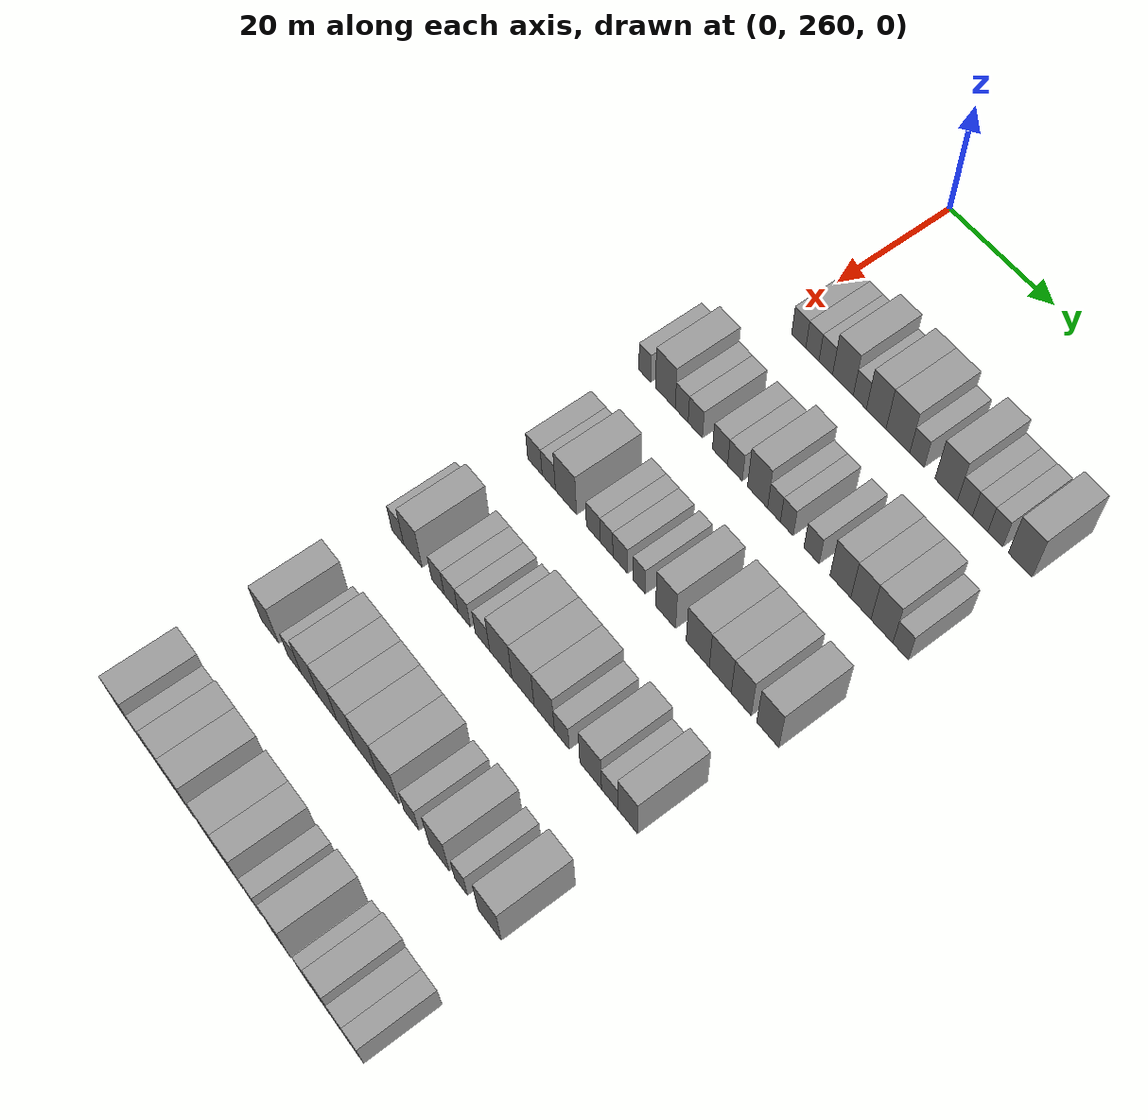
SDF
<sdf version="1.6">
 <world name="default">
  <model name="building_145">
   <static>1</static>
   <pose>25.0000 263.9168 0 0.000000 0.000000 0.000000</pose>
   <link name="link">
    <pose>0 0 3.00 0 0 0</pose>
    <collision name="collision"><geometry><box><size>10.0000 2.8024 6.0000</size></box></geometry></collision>
    <visual name="visual">
     <cast_shadows>0</cast_shadows>
     <geometry><box><size>10.0000 2.8024 6.0000</size></box></geometry>
     <material>
      <script>
       <uri>model://grey_wall/materials/scripts</uri>
       <uri>model://grey_wall/materials/textures</uri>
       <name>vrc/grey_wall</name>
      </script>
     </material>
    </visual>
   </link>
  </model>
  <model name="building_146">
   <static>1</static>
   <pose>25.0000 266.6062 0 0.000000 0.000000 0.000000</pose>
   <link name="link">
    <pose>0 0 3.00 0 0 0</pose>
    <collision name="collision"><geometry><box><size>10.0000 2.5764 6.0000</size></box></geometry></collision>
    <visual name="visual">
     <cast_shadows>0</cast_shadows>
     <geometry><box><size>10.0000 2.5764 6.0000</size></box></geometry>
     <material>
      <script>
       <uri>model://grey_wall/materials/scripts</uri>
       <uri>model://grey_wall/materials/textures</uri>
       <name>vrc/grey_wall</name>
      </script>
     </material>
    </visual>
   </link>
  </model>
  <model name="building_147">
   <static>1</static>
   <pose>25.0000 269.2245 0 0.000000 0.000000 0.000000</pose>
   <link name="link">
    <pose>0 0 3.00 0 0 0</pose>
    <collision name="collision"><geometry><box><size>10.0000 2.6601 6.0000</size></box></geometry></collision>
    <visual name="visual">
     <cast_shadows>0</cast_shadows>
     <geometry><box><size>10.0000 2.6601 6.0000</size></box></geometry>
     <material>
      <script>
       <uri>model://grey_wall/materials/scripts</uri>
       <uri>model://grey_wall/materials/textures</uri>
       <name>vrc/grey_wall</name>
      </script>
     </material>
    </visual>
   </link>
  </model>
  <model name="building_148">
   <static>1</static>
   <pose>25.0000 272.5549 0 0.000000 0.000000 0.000000</pose>
   <link name="link">
    <pose>0 0 4.50 0 0 0</pose>
    <collision name="collision"><geometry><box><size>10.0000 4.0006 9.0000</size></box></geometry></collision>
    <visual name="visual">
     <cast_shadows>0</cast_shadows>
     <geometry><box><size>10.0000 4.0006 9.0000</size></box></geometry>
     <material>
      <script>
       <uri>model://grey_wall/materials/scripts</uri>
       <uri>model://grey_wall/materials/textures</uri>
       <name>vrc/grey_wall</name>
      </script>
     </material>
    </visual>
   </link>
  </model>
  <model name="building_149">
   <static>1</static>
   <pose>25.0000 275.8095 0 0.000000 0.000000 0.000000</pose>
   <link name="link">
    <pose>0 0 3.00 0 0 0</pose>
    <collision name="collision"><geometry><box><size>10.0000 2.5087 6.0000</size></box></geometry></collision>
    <visual name="visual">
     <cast_shadows>0</cast_shadows>
     <geometry><box><size>10.0000 2.5087 6.0000</size></box></geometry>
     <material>
      <script>
       <uri>model://grey_wall/materials/scripts</uri>
       <uri>model://grey_wall/materials/textures</uri>
       <name>vrc/grey_wall</name>
      </script>
     </material>
    </visual>
   </link>
  </model>
  <model name="building_150">
   <static>1</static>
   <pose>25.0000 278.9166 0 0.000000 0.000000 0.000000</pose>
   <link name="link">
    <pose>0 0 4.50 0 0 0</pose>
    <collision name="collision"><geometry><box><size>10.0000 3.7054 9.0000</size></box></geometry></collision>
    <visual name="visual">
     <cast_shadows>0</cast_shadows>
     <geometry><box><size>10.0000 3.7054 9.0000</size></box></geometry>
     <material>
      <script>
       <uri>model://grey_wall/materials/scripts</uri>
       <uri>model://grey_wall/materials/textures</uri>
       <name>vrc/grey_wall</name>
      </script>
     </material>
    </visual>
   </link>
  </model>
  <model name="building_151">
   <static>1</static>
   <pose>25.0000 282.9810 0 0.000000 0.000000 0.000000</pose>
   <link name="link">
    <pose>0 0 4.50 0 0 0</pose>
    <collision name="collision"><geometry><box><size>10.0000 4.4233 9.0000</size></box></geometry></collision>
    <visual name="visual">
     <cast_shadows>0</cast_shadows>
     <geometry><box><size>10.0000 4.4233 9.0000</size></box></geometry>
     <material>
      <script>
       <uri>model://grey_wall/materials/scripts</uri>
       <uri>model://grey_wall/materials/textures</uri>
       <name>vrc/grey_wall</name>
      </script>
     </material>
    </visual>
   </link>
  </model>
  <model name="building_152">
   <static>1</static>
   <pose>25.0000 286.5174 0 0.000000 0.000000 0.000000</pose>
   <link name="link">
    <pose>0 0 3.00 0 0 0</pose>
    <collision name="collision"><geometry><box><size>10.0000 2.6497 6.0000</size></box></geometry></collision>
    <visual name="visual">
     <cast_shadows>0</cast_shadows>
     <geometry><box><size>10.0000 2.6497 6.0000</size></box></geometry>
     <material>
      <script>
       <uri>model://grey_wall/materials/scripts</uri>
       <uri>model://grey_wall/materials/textures</uri>
       <name>vrc/grey_wall</name>
      </script>
     </material>
    </visual>
   </link>
  </model>
  <model name="building_153">
   <static>1</static>
   <pose>25.0000 291.8683 0 0.000000 0.000000 0.000000</pose>
   <link name="link">
    <pose>0 0 4.50 0 0 0</pose>
    <collision name="collision"><geometry><box><size>10.0000 4.0520 9.0000</size></box></geometry></collision>
    <visual name="visual">
     <cast_shadows>0</cast_shadows>
     <geometry><box><size>10.0000 4.0520 9.0000</size></box></geometry>
     <material>
      <script>
       <uri>model://grey_wall/materials/scripts</uri>
       <uri>model://grey_wall/materials/textures</uri>
       <name>vrc/grey_wall</name>
      </script>
     </material>
    </visual>
   </link>
  </model>
  <model name="building_154">
   <static>1</static>
   <pose>25.0000 295.2317 0 0.000000 0.000000 0.000000</pose>
   <link name="link">
    <pose>0 0 3.00 0 0 0</pose>
    <collision name="collision"><geometry><box><size>10.0000 2.6749 6.0000</size></box></geometry></collision>
    <visual name="visual">
     <cast_shadows>0</cast_shadows>
     <geometry><box><size>10.0000 2.6749 6.0000</size></box></geometry>
     <material>
      <script>
       <uri>model://grey_wall/materials/scripts</uri>
       <uri>model://grey_wall/materials/textures</uri>
       <name>vrc/grey_wall</name>
      </script>
     </material>
    </visual>
   </link>
  </model>
  <model name="building_155">
   <static>1</static>
   <pose>25.0000 297.9296 0 0.000000 0.000000 0.000000</pose>
   <link name="link">
    <pose>0 0 3.00 0 0 0</pose>
    <collision name="collision"><geometry><box><size>10.0000 2.7210 6.0000</size></box></geometry></collision>
    <visual name="visual">
     <cast_shadows>0</cast_shadows>
     <geometry><box><size>10.0000 2.7210 6.0000</size></box></geometry>
     <material>
      <script>
       <uri>model://grey_wall/materials/scripts</uri>
       <uri>model://grey_wall/materials/textures</uri>
       <name>vrc/grey_wall</name>
      </script>
     </material>
    </visual>
   </link>
  </model>
  <model name="building_156">
   <static>1</static>
   <pose>25.0000 300.6018 0 0.000000 0.000000 0.000000</pose>
   <link name="link">
    <pose>0 0 3.00 0 0 0</pose>
    <collision name="collision"><geometry><box><size>10.0000 2.6234 6.0000</size></box></geometry></collision>
    <visual name="visual">
     <cast_shadows>0</cast_shadows>
     <geometry><box><size>10.0000 2.6234 6.0000</size></box></geometry>
     <material>
      <script>
       <uri>model://grey_wall/materials/scripts</uri>
       <uri>model://grey_wall/materials/textures</uri>
       <name>vrc/grey_wall</name>
      </script>
     </material>
    </visual>
   </link>
  </model>
  <model name="building_157">
   <static>1</static>
   <pose>25.0000 304.9858 0 0.000000 0.000000 0.000000</pose>
   <link name="link">
    <pose>0 0 4.50 0 0 0</pose>
    <collision name="collision"><geometry><box><size>10.0000 4.1446 9.0000</size></box></geometry></collision>
    <visual name="visual">
     <cast_shadows>0</cast_shadows>
     <geometry><box><size>10.0000 4.1446 9.0000</size></box></geometry>
     <material>
      <script>
       <uri>model://grey_wall/materials/scripts</uri>
       <uri>model://grey_wall/materials/textures</uri>
       <name>vrc/grey_wall</name>
      </script>
     </material>
    </visual>
   </link>
  </model>
  <model name="building_318">
   <static>1</static>
   <pose>44.0000 256.0887 0 0.000000 0.000000 0.000000</pose>
   <link name="link">
    <pose>0 0 3.00 0 0 0</pose>
    <collision name="collision"><geometry><box><size>10.0000 2.4007 6.0000</size></box></geometry></collision>
    <visual name="visual">
     <cast_shadows>0</cast_shadows>
     <geometry><box><size>10.0000 2.4007 6.0000</size></box></geometry>
     <material>
      <script>
       <uri>model://grey_wall/materials/scripts</uri>
       <uri>model://grey_wall/materials/textures</uri>
       <name>vrc/grey_wall</name>
      </script>
     </material>
    </visual>
   </link>
  </model>
  <model name="building_319">
   <static>1</static>
   <pose>44.0000 260.2966 0 0.000000 0.000000 0.000000</pose>
   <link name="link">
    <pose>0 0 4.50 0 0 0</pose>
    <collision name="collision"><geometry><box><size>10.0000 4.0151 9.0000</size></box></geometry></collision>
    <visual name="visual">
     <cast_shadows>0</cast_shadows>
     <geometry><box><size>10.0000 4.0151 9.0000</size></box></geometry>
     <material>
      <script>
       <uri>model://grey_wall/materials/scripts</uri>
       <uri>model://grey_wall/materials/textures</uri>
       <name>vrc/grey_wall</name>
      </script>
     </material>
    </visual>
   </link>
  </model>
  <model name="building_320">
   <static>1</static>
   <pose>44.0000 263.6017 0 0.000000 0.000000 0.000000</pose>
   <link name="link">
    <pose>0 0 3.00 0 0 0</pose>
    <collision name="collision"><geometry><box><size>10.0000 2.5951 6.0000</size></box></geometry></collision>
    <visual name="visual">
     <cast_shadows>0</cast_shadows>
     <geometry><box><size>10.0000 2.5951 6.0000</size></box></geometry>
     <material>
      <script>
       <uri>model://grey_wall/materials/scripts</uri>
       <uri>model://grey_wall/materials/textures</uri>
       <name>vrc/grey_wall</name>
      </script>
     </material>
    </visual>
   </link>
  </model>
  <model name="building_321">
   <static>1</static>
   <pose>44.0000 266.3293 0 0.000000 0.000000 0.000000</pose>
   <link name="link">
    <pose>0 0 3.00 0 0 0</pose>
    <collision name="collision"><geometry><box><size>10.0000 2.8601 6.0000</size></box></geometry></collision>
    <visual name="visual">
     <cast_shadows>0</cast_shadows>
     <geometry><box><size>10.0000 2.8601 6.0000</size></box></geometry>
     <material>
      <script>
       <uri>model://grey_wall/materials/scripts</uri>
       <uri>model://grey_wall/materials/textures</uri>
       <name>vrc/grey_wall</name>
      </script>
     </material>
    </visual>
   </link>
  </model>
  <model name="building_322">
   <static>1</static>
   <pose>44.0000 271.2401 0 0.000000 0.000000 0.000000</pose>
   <link name="link">
    <pose>0 0 3.00 0 0 0</pose>
    <collision name="collision"><geometry><box><size>10.0000 2.9617 6.0000</size></box></geometry></collision>
    <visual name="visual">
     <cast_shadows>0</cast_shadows>
     <geometry><box><size>10.0000 2.9617 6.0000</size></box></geometry>
     <material>
      <script>
       <uri>model://grey_wall/materials/scripts</uri>
       <uri>model://grey_wall/materials/textures</uri>
       <name>vrc/grey_wall</name>
      </script>
     </material>
    </visual>
   </link>
  </model>
  <model name="building_323">
   <static>1</static>
   <pose>44.0000 274.1490 0 0.000000 0.000000 0.000000</pose>
   <link name="link">
    <pose>0 0 3.00 0 0 0</pose>
    <collision name="collision"><geometry><box><size>10.0000 2.8560 6.0000</size></box></geometry></collision>
    <visual name="visual">
     <cast_shadows>0</cast_shadows>
     <geometry><box><size>10.0000 2.8560 6.0000</size></box></geometry>
     <material>
      <script>
       <uri>model://grey_wall/materials/scripts</uri>
       <uri>model://grey_wall/materials/textures</uri>
       <name>vrc/grey_wall</name>
      </script>
     </material>
    </visual>
   </link>
  </model>
  <model name="building_324">
   <static>1</static>
   <pose>44.0000 278.5038 0 0.000000 0.000000 0.000000</pose>
   <link name="link">
    <pose>0 0 4.50 0 0 0</pose>
    <collision name="collision"><geometry><box><size>10.0000 3.8538 9.0000</size></box></geometry></collision>
    <visual name="visual">
     <cast_shadows>0</cast_shadows>
     <geometry><box><size>10.0000 3.8538 9.0000</size></box></geometry>
     <material>
      <script>
       <uri>model://grey_wall/materials/scripts</uri>
       <uri>model://grey_wall/materials/textures</uri>
       <name>vrc/grey_wall</name>
      </script>
     </material>
    </visual>
   </link>
  </model>
  <model name="building_325">
   <static>1</static>
   <pose>44.0000 281.6407 0 0.000000 0.000000 0.000000</pose>
   <link name="link">
    <pose>0 0 3.00 0 0 0</pose>
    <collision name="collision"><geometry><box><size>10.0000 2.4199 6.0000</size></box></geometry></collision>
    <visual name="visual">
     <cast_shadows>0</cast_shadows>
     <geometry><box><size>10.0000 2.4199 6.0000</size></box></geometry>
     <material>
      <script>
       <uri>model://grey_wall/materials/scripts</uri>
       <uri>model://grey_wall/materials/textures</uri>
       <name>vrc/grey_wall</name>
      </script>
     </material>
    </visual>
   </link>
  </model>
  <model name="building_326">
   <static>1</static>
   <pose>44.0000 284.0597 0 0.000000 0.000000 0.000000</pose>
   <link name="link">
    <pose>0 0 3.00 0 0 0</pose>
    <collision name="collision"><geometry><box><size>10.0000 2.4182 6.0000</size></box></geometry></collision>
    <visual name="visual">
     <cast_shadows>0</cast_shadows>
     <geometry><box><size>10.0000 2.4182 6.0000</size></box></geometry>
     <material>
      <script>
       <uri>model://grey_wall/materials/scripts</uri>
       <uri>model://grey_wall/materials/textures</uri>
       <name>vrc/grey_wall</name>
      </script>
     </material>
    </visual>
   </link>
  </model>
  <model name="building_327">
   <static>1</static>
   <pose>44.0000 288.6812 0 0.000000 0.000000 0.000000</pose>
   <link name="link">
    <pose>0 0 3.00 0 0 0</pose>
    <collision name="collision"><geometry><box><size>10.0000 2.8248 6.0000</size></box></geometry></collision>
    <visual name="visual">
     <cast_shadows>0</cast_shadows>
     <geometry><box><size>10.0000 2.8248 6.0000</size></box></geometry>
     <material>
      <script>
       <uri>model://grey_wall/materials/scripts</uri>
       <uri>model://grey_wall/materials/textures</uri>
       <name>vrc/grey_wall</name>
      </script>
     </material>
    </visual>
   </link>
  </model>
  <model name="building_328">
   <static>1</static>
   <pose>44.0000 293.9810 0 0.000000 0.000000 0.000000</pose>
   <link name="link">
    <pose>0 0 4.50 0 0 0</pose>
    <collision name="collision"><geometry><box><size>10.0000 3.7749 9.0000</size></box></geometry></collision>
    <visual name="visual">
     <cast_shadows>0</cast_shadows>
     <geometry><box><size>10.0000 3.7749 9.0000</size></box></geometry>
     <material>
      <script>
       <uri>model://grey_wall/materials/scripts</uri>
       <uri>model://grey_wall/materials/textures</uri>
       <name>vrc/grey_wall</name>
      </script>
     </material>
    </visual>
   </link>
  </model>
  <model name="building_329">
   <static>1</static>
   <pose>44.0000 297.6716 0 0.000000 0.000000 0.000000</pose>
   <link name="link">
    <pose>0 0 4.50 0 0 0</pose>
    <collision name="collision"><geometry><box><size>10.0000 3.6063 9.0000</size></box></geometry></collision>
    <visual name="visual">
     <cast_shadows>0</cast_shadows>
     <geometry><box><size>10.0000 3.6063 9.0000</size></box></geometry>
     <material>
      <script>
       <uri>model://grey_wall/materials/scripts</uri>
       <uri>model://grey_wall/materials/textures</uri>
       <name>vrc/grey_wall</name>
      </script>
     </material>
    </visual>
   </link>
  </model>
  <model name="building_330">
   <static>1</static>
   <pose>44.0000 301.4115 0 0.000000 0.000000 0.000000</pose>
   <link name="link">
    <pose>0 0 4.50 0 0 0</pose>
    <collision name="collision"><geometry><box><size>10.0000 3.8734 9.0000</size></box></geometry></collision>
    <visual name="visual">
     <cast_shadows>0</cast_shadows>
     <geometry><box><size>10.0000 3.8734 9.0000</size></box></geometry>
     <material>
      <script>
       <uri>model://grey_wall/materials/scripts</uri>
       <uri>model://grey_wall/materials/textures</uri>
       <name>vrc/grey_wall</name>
      </script>
     </material>
    </visual>
   </link>
  </model>
  <model name="building_331">
   <static>1</static>
   <pose>44.0000 304.7161 0 0.000000 0.000000 0.000000</pose>
   <link name="link">
    <pose>0 0 3.00 0 0 0</pose>
    <collision name="collision"><geometry><box><size>10.0000 2.7359 6.0000</size></box></geometry></collision>
    <visual name="visual">
     <cast_shadows>0</cast_shadows>
     <geometry><box><size>10.0000 2.7359 6.0000</size></box></geometry>
     <material>
      <script>
       <uri>model://grey_wall/materials/scripts</uri>
       <uri>model://grey_wall/materials/textures</uri>
       <name>vrc/grey_wall</name>
      </script>
     </material>
    </visual>
   </link>
  </model>
  <model name="building_494">
   <static>1</static>
   <pose>63.0000 258.3617 0 0.000000 0.000000 0.000000</pose>
   <link name="link">
    <pose>0 0 3.00 0 0 0</pose>
    <collision name="collision"><geometry><box><size>10.0000 2.9866 6.0000</size></box></geometry></collision>
    <visual name="visual">
     <cast_shadows>0</cast_shadows>
     <geometry><box><size>10.0000 2.9866 6.0000</size></box></geometry>
     <material>
      <script>
       <uri>model://grey_wall/materials/scripts</uri>
       <uri>model://grey_wall/materials/textures</uri>
       <name>vrc/grey_wall</name>
      </script>
     </material>
    </visual>
   </link>
  </model>
  <model name="building_495">
   <static>1</static>
   <pose>63.0000 261.2268 0 0.000000 0.000000 0.000000</pose>
   <link name="link">
    <pose>0 0 3.00 0 0 0</pose>
    <collision name="collision"><geometry><box><size>10.0000 2.7436 6.0000</size></box></geometry></collision>
    <visual name="visual">
     <cast_shadows>0</cast_shadows>
     <geometry><box><size>10.0000 2.7436 6.0000</size></box></geometry>
     <material>
      <script>
       <uri>model://grey_wall/materials/scripts</uri>
       <uri>model://grey_wall/materials/textures</uri>
       <name>vrc/grey_wall</name>
      </script>
     </material>
    </visual>
   </link>
  </model>
  <model name="building_496">
   <static>1</static>
   <pose>63.0000 264.7548 0 0.000000 0.000000 0.000000</pose>
   <link name="link">
    <pose>0 0 4.50 0 0 0</pose>
    <collision name="collision"><geometry><box><size>10.0000 4.3124 9.0000</size></box></geometry></collision>
    <visual name="visual">
     <cast_shadows>0</cast_shadows>
     <geometry><box><size>10.0000 4.3124 9.0000</size></box></geometry>
     <material>
      <script>
       <uri>model://grey_wall/materials/scripts</uri>
       <uri>model://grey_wall/materials/textures</uri>
       <name>vrc/grey_wall</name>
      </script>
     </material>
    </visual>
   </link>
  </model>
  <model name="building_497">
   <static>1</static>
   <pose>63.0000 270.3085 0 0.000000 0.000000 0.000000</pose>
   <link name="link">
    <pose>0 0 3.00 0 0 0</pose>
    <collision name="collision"><geometry><box><size>10.0000 2.7950 6.0000</size></box></geometry></collision>
    <visual name="visual">
     <cast_shadows>0</cast_shadows>
     <geometry><box><size>10.0000 2.7950 6.0000</size></box></geometry>
     <material>
      <script>
       <uri>model://grey_wall/materials/scripts</uri>
       <uri>model://grey_wall/materials/textures</uri>
       <name>vrc/grey_wall</name>
      </script>
     </material>
    </visual>
   </link>
  </model>
  <model name="building_498">
   <static>1</static>
   <pose>63.0000 272.9425 0 0.000000 0.000000 0.000000</pose>
   <link name="link">
    <pose>0 0 3.00 0 0 0</pose>
    <collision name="collision"><geometry><box><size>10.0000 2.4731 6.0000</size></box></geometry></collision>
    <visual name="visual">
     <cast_shadows>0</cast_shadows>
     <geometry><box><size>10.0000 2.4731 6.0000</size></box></geometry>
     <material>
      <script>
       <uri>model://grey_wall/materials/scripts</uri>
       <uri>model://grey_wall/materials/textures</uri>
       <name>vrc/grey_wall</name>
      </script>
     </material>
    </visual>
   </link>
  </model>
  <model name="building_499">
   <static>1</static>
   <pose>63.0000 275.6308 0 0.000000 0.000000 0.000000</pose>
   <link name="link">
    <pose>0 0 3.00 0 0 0</pose>
    <collision name="collision"><geometry><box><size>10.0000 2.9033 6.0000</size></box></geometry></collision>
    <visual name="visual">
     <cast_shadows>0</cast_shadows>
     <geometry><box><size>10.0000 2.9033 6.0000</size></box></geometry>
     <material>
      <script>
       <uri>model://grey_wall/materials/scripts</uri>
       <uri>model://grey_wall/materials/textures</uri>
       <name>vrc/grey_wall</name>
      </script>
     </material>
    </visual>
   </link>
  </model>
  <model name="building_500">
   <static>1</static>
   <pose>63.0000 279.3023 0 0.000000 0.000000 0.000000</pose>
   <link name="link">
    <pose>0 0 3.00 0 0 0</pose>
    <collision name="collision"><geometry><box><size>10.0000 2.4397 6.0000</size></box></geometry></collision>
    <visual name="visual">
     <cast_shadows>0</cast_shadows>
     <geometry><box><size>10.0000 2.4397 6.0000</size></box></geometry>
     <material>
      <script>
       <uri>model://grey_wall/materials/scripts</uri>
       <uri>model://grey_wall/materials/textures</uri>
       <name>vrc/grey_wall</name>
      </script>
     </material>
    </visual>
   </link>
  </model>
  <model name="building_501">
   <static>1</static>
   <pose>63.0000 284.4084 0 0.000000 0.000000 0.000000</pose>
   <link name="link">
    <pose>0 0 4.50 0 0 0</pose>
    <collision name="collision"><geometry><box><size>10.0000 3.7726 9.0000</size></box></geometry></collision>
    <visual name="visual">
     <cast_shadows>0</cast_shadows>
     <geometry><box><size>10.0000 3.7726 9.0000</size></box></geometry>
     <material>
      <script>
       <uri>model://grey_wall/materials/scripts</uri>
       <uri>model://grey_wall/materials/textures</uri>
       <name>vrc/grey_wall</name>
      </script>
     </material>
    </visual>
   </link>
  </model>
  <model name="building_502">
   <static>1</static>
   <pose>63.0000 290.4521 0 0.000000 0.000000 0.000000</pose>
   <link name="link">
    <pose>0 0 4.50 0 0 0</pose>
    <collision name="collision"><geometry><box><size>10.0000 4.3149 9.0000</size></box></geometry></collision>
    <visual name="visual">
     <cast_shadows>0</cast_shadows>
     <geometry><box><size>10.0000 4.3149 9.0000</size></box></geometry>
     <material>
      <script>
       <uri>model://grey_wall/materials/scripts</uri>
       <uri>model://grey_wall/materials/textures</uri>
       <name>vrc/grey_wall</name>
      </script>
     </material>
    </visual>
   </link>
  </model>
  <model name="building_503">
   <static>1</static>
   <pose>63.0000 294.6258 0 0.000000 0.000000 0.000000</pose>
   <link name="link">
    <pose>0 0 4.50 0 0 0</pose>
    <collision name="collision"><geometry><box><size>10.0000 4.0325 9.0000</size></box></geometry></collision>
    <visual name="visual">
     <cast_shadows>0</cast_shadows>
     <geometry><box><size>10.0000 4.0325 9.0000</size></box></geometry>
     <material>
      <script>
       <uri>model://grey_wall/materials/scripts</uri>
       <uri>model://grey_wall/materials/textures</uri>
       <name>vrc/grey_wall</name>
      </script>
     </material>
    </visual>
   </link>
  </model>
  <model name="building_504">
   <static>1</static>
   <pose>63.0000 298.4525 0 0.000000 0.000000 0.000000</pose>
   <link name="link">
    <pose>0 0 4.50 0 0 0</pose>
    <collision name="collision"><geometry><box><size>10.0000 3.6209 9.0000</size></box></geometry></collision>
    <visual name="visual">
     <cast_shadows>0</cast_shadows>
     <geometry><box><size>10.0000 3.6209 9.0000</size></box></geometry>
     <material>
      <script>
       <uri>model://grey_wall/materials/scripts</uri>
       <uri>model://grey_wall/materials/textures</uri>
       <name>vrc/grey_wall</name>
      </script>
     </material>
    </visual>
   </link>
  </model>
  <model name="building_505">
   <static>1</static>
   <pose>63.0000 303.2364 0 0.000000 0.000000 0.000000</pose>
   <link name="link">
    <pose>0 0 4.50 0 0 0</pose>
    <collision name="collision"><geometry><box><size>10.0000 3.9469 9.0000</size></box></geometry></collision>
    <visual name="visual">
     <cast_shadows>0</cast_shadows>
     <geometry><box><size>10.0000 3.9469 9.0000</size></box></geometry>
     <material>
      <script>
       <uri>model://grey_wall/materials/scripts</uri>
       <uri>model://grey_wall/materials/textures</uri>
       <name>vrc/grey_wall</name>
      </script>
     </material>
    </visual>
   </link>
  </model>
  <model name="building_680">
   <static>1</static>
   <pose>82.0000 256.2432 0 0.000000 0.000000 0.000000</pose>
   <link name="link">
    <pose>0 0 3.00 0 0 0</pose>
    <collision name="collision"><geometry><box><size>10.0000 2.5572 6.0000</size></box></geometry></collision>
    <visual name="visual">
     <cast_shadows>0</cast_shadows>
     <geometry><box><size>10.0000 2.5572 6.0000</size></box></geometry>
     <material>
      <script>
       <uri>model://grey_wall/materials/scripts</uri>
       <uri>model://grey_wall/materials/textures</uri>
       <name>vrc/grey_wall</name>
      </script>
     </material>
    </visual>
   </link>
  </model>
  <model name="building_681">
   <static>1</static>
   <pose>82.0000 259.4577 0 0.000000 0.000000 0.000000</pose>
   <link name="link">
    <pose>0 0 4.50 0 0 0</pose>
    <collision name="collision"><geometry><box><size>10.0000 3.8717 9.0000</size></box></geometry></collision>
    <visual name="visual">
     <cast_shadows>0</cast_shadows>
     <geometry><box><size>10.0000 3.8717 9.0000</size></box></geometry>
     <material>
      <script>
       <uri>model://grey_wall/materials/scripts</uri>
       <uri>model://grey_wall/materials/textures</uri>
       <name>vrc/grey_wall</name>
      </script>
     </material>
    </visual>
   </link>
  </model>
  <model name="building_682">
   <static>1</static>
   <pose>82.0000 264.7174 0 0.000000 0.000000 0.000000</pose>
   <link name="link">
    <pose>0 0 3.00 0 0 0</pose>
    <collision name="collision"><geometry><box><size>10.0000 2.6478 6.0000</size></box></geometry></collision>
    <visual name="visual">
     <cast_shadows>0</cast_shadows>
     <geometry><box><size>10.0000 2.6478 6.0000</size></box></geometry>
     <material>
      <script>
       <uri>model://grey_wall/materials/scripts</uri>
       <uri>model://grey_wall/materials/textures</uri>
       <name>vrc/grey_wall</name>
      </script>
     </material>
    </visual>
   </link>
  </model>
  <model name="building_683">
   <static>1</static>
   <pose>82.0000 267.4452 0 0.000000 0.000000 0.000000</pose>
   <link name="link">
    <pose>0 0 3.00 0 0 0</pose>
    <collision name="collision"><geometry><box><size>10.0000 2.8079 6.0000</size></box></geometry></collision>
    <visual name="visual">
     <cast_shadows>0</cast_shadows>
     <geometry><box><size>10.0000 2.8079 6.0000</size></box></geometry>
     <material>
      <script>
       <uri>model://grey_wall/materials/scripts</uri>
       <uri>model://grey_wall/materials/textures</uri>
       <name>vrc/grey_wall</name>
      </script>
     </material>
    </visual>
   </link>
  </model>
  <model name="building_684">
   <static>1</static>
   <pose>82.0000 270.1180 0 0.000000 0.000000 0.000000</pose>
   <link name="link">
    <pose>0 0 3.00 0 0 0</pose>
    <collision name="collision"><geometry><box><size>10.0000 2.5377 6.0000</size></box></geometry></collision>
    <visual name="visual">
     <cast_shadows>0</cast_shadows>
     <geometry><box><size>10.0000 2.5377 6.0000</size></box></geometry>
     <material>
      <script>
       <uri>model://grey_wall/materials/scripts</uri>
       <uri>model://grey_wall/materials/textures</uri>
       <name>vrc/grey_wall</name>
      </script>
     </material>
    </visual>
   </link>
  </model>
  <model name="building_685">
   <static>1</static>
   <pose>82.0000 273.8341 0 0.000000 0.000000 0.000000</pose>
   <link name="link">
    <pose>0 0 3.00 0 0 0</pose>
    <collision name="collision"><geometry><box><size>10.0000 2.8944 6.0000</size></box></geometry></collision>
    <visual name="visual">
     <cast_shadows>0</cast_shadows>
     <geometry><box><size>10.0000 2.8944 6.0000</size></box></geometry>
     <material>
      <script>
       <uri>model://grey_wall/materials/scripts</uri>
       <uri>model://grey_wall/materials/textures</uri>
       <name>vrc/grey_wall</name>
      </script>
     </material>
    </visual>
   </link>
  </model>
  <model name="building_686">
   <static>1</static>
   <pose>82.0000 277.4903 0 0.000000 0.000000 0.000000</pose>
   <link name="link">
    <pose>0 0 4.50 0 0 0</pose>
    <collision name="collision"><geometry><box><size>10.0000 4.4180 9.0000</size></box></geometry></collision>
    <visual name="visual">
     <cast_shadows>0</cast_shadows>
     <geometry><box><size>10.0000 4.4180 9.0000</size></box></geometry>
     <material>
      <script>
       <uri>model://grey_wall/materials/scripts</uri>
       <uri>model://grey_wall/materials/textures</uri>
       <name>vrc/grey_wall</name>
      </script>
     </material>
    </visual>
   </link>
  </model>
  <model name="building_687">
   <static>1</static>
   <pose>82.0000 281.8822 0 0.000000 0.000000 0.000000</pose>
   <link name="link">
    <pose>0 0 4.50 0 0 0</pose>
    <collision name="collision"><geometry><box><size>10.0000 4.3656 9.0000</size></box></geometry></collision>
    <visual name="visual">
     <cast_shadows>0</cast_shadows>
     <geometry><box><size>10.0000 4.3656 9.0000</size></box></geometry>
     <material>
      <script>
       <uri>model://grey_wall/materials/scripts</uri>
       <uri>model://grey_wall/materials/textures</uri>
       <name>vrc/grey_wall</name>
      </script>
     </material>
    </visual>
   </link>
  </model>
  <model name="building_688">
   <static>1</static>
   <pose>82.0000 286.0206 0 0.000000 0.000000 0.000000</pose>
   <link name="link">
    <pose>0 0 4.50 0 0 0</pose>
    <collision name="collision"><geometry><box><size>10.0000 3.9113 9.0000</size></box></geometry></collision>
    <visual name="visual">
     <cast_shadows>0</cast_shadows>
     <geometry><box><size>10.0000 3.9113 9.0000</size></box></geometry>
     <material>
      <script>
       <uri>model://grey_wall/materials/scripts</uri>
       <uri>model://grey_wall/materials/textures</uri>
       <name>vrc/grey_wall</name>
      </script>
     </material>
    </visual>
   </link>
  </model>
  <model name="building_689">
   <static>1</static>
   <pose>82.0000 289.3879 0 0.000000 0.000000 0.000000</pose>
   <link name="link">
    <pose>0 0 3.00 0 0 0</pose>
    <collision name="collision"><geometry><box><size>10.0000 2.8234 6.0000</size></box></geometry></collision>
    <visual name="visual">
     <cast_shadows>0</cast_shadows>
     <geometry><box><size>10.0000 2.8234 6.0000</size></box></geometry>
     <material>
      <script>
       <uri>model://grey_wall/materials/scripts</uri>
       <uri>model://grey_wall/materials/textures</uri>
       <name>vrc/grey_wall</name>
      </script>
     </material>
    </visual>
   </link>
  </model>
  <model name="building_690">
   <static>1</static>
   <pose>82.0000 294.8202 0 0.000000 0.000000 0.000000</pose>
   <link name="link">
    <pose>0 0 4.50 0 0 0</pose>
    <collision name="collision"><geometry><box><size>10.0000 4.0410 9.0000</size></box></geometry></collision>
    <visual name="visual">
     <cast_shadows>0</cast_shadows>
     <geometry><box><size>10.0000 4.0410 9.0000</size></box></geometry>
     <material>
      <script>
       <uri>model://grey_wall/materials/scripts</uri>
       <uri>model://grey_wall/materials/textures</uri>
       <name>vrc/grey_wall</name>
      </script>
     </material>
    </visual>
   </link>
  </model>
  <model name="building_691">
   <static>1</static>
   <pose>82.0000 298.3397 0 0.000000 0.000000 0.000000</pose>
   <link name="link">
    <pose>0 0 3.00 0 0 0</pose>
    <collision name="collision"><geometry><box><size>10.0000 2.9981 6.0000</size></box></geometry></collision>
    <visual name="visual">
     <cast_shadows>0</cast_shadows>
     <geometry><box><size>10.0000 2.9981 6.0000</size></box></geometry>
     <material>
      <script>
       <uri>model://grey_wall/materials/scripts</uri>
       <uri>model://grey_wall/materials/textures</uri>
       <name>vrc/grey_wall</name>
      </script>
     </material>
    </visual>
   </link>
  </model>
  <model name="building_692">
   <static>1</static>
   <pose>82.0000 301.6391 0 0.000000 0.000000 0.000000</pose>
   <link name="link">
    <pose>0 0 4.50 0 0 0</pose>
    <collision name="collision"><geometry><box><size>10.0000 3.6008 9.0000</size></box></geometry></collision>
    <visual name="visual">
     <cast_shadows>0</cast_shadows>
     <geometry><box><size>10.0000 3.6008 9.0000</size></box></geometry>
     <material>
      <script>
       <uri>model://grey_wall/materials/scripts</uri>
       <uri>model://grey_wall/materials/textures</uri>
       <name>vrc/grey_wall</name>
      </script>
     </material>
    </visual>
   </link>
  </model>
  <model name="building_858">
   <static>1</static>
   <pose>101.0000 257.4919 0 0.000000 0.000000 0.000000</pose>
   <link name="link">
    <pose>0 0 4.50 0 0 0</pose>
    <collision name="collision"><geometry><box><size>10.0000 3.7697 9.0000</size></box></geometry></collision>
    <visual name="visual">
     <cast_shadows>0</cast_shadows>
     <geometry><box><size>10.0000 3.7697 9.0000</size></box></geometry>
     <material>
      <script>
       <uri>model://grey_wall/materials/scripts</uri>
       <uri>model://grey_wall/materials/textures</uri>
       <name>vrc/grey_wall</name>
      </script>
     </material>
    </visual>
   </link>
  </model>
  <model name="building_859">
   <static>1</static>
   <pose>101.0000 262.7873 0 0.000000 0.000000 0.000000</pose>
   <link name="link">
    <pose>0 0 3.00 0 0 0</pose>
    <collision name="collision"><geometry><box><size>10.0000 2.8212 6.0000</size></box></geometry></collision>
    <visual name="visual">
     <cast_shadows>0</cast_shadows>
     <geometry><box><size>10.0000 2.8212 6.0000</size></box></geometry>
     <material>
      <script>
       <uri>model://grey_wall/materials/scripts</uri>
       <uri>model://grey_wall/materials/textures</uri>
       <name>vrc/grey_wall</name>
      </script>
     </material>
    </visual>
   </link>
  </model>
  <model name="building_860">
   <static>1</static>
   <pose>101.0000 266.0982 0 0.000000 0.000000 0.000000</pose>
   <link name="link">
    <pose>0 0 4.50 0 0 0</pose>
    <collision name="collision"><geometry><box><size>10.0000 3.8006 9.0000</size></box></geometry></collision>
    <visual name="visual">
     <cast_shadows>0</cast_shadows>
     <geometry><box><size>10.0000 3.8006 9.0000</size></box></geometry>
     <material>
      <script>
       <uri>model://grey_wall/materials/scripts</uri>
       <uri>model://grey_wall/materials/textures</uri>
       <name>vrc/grey_wall</name>
      </script>
     </material>
    </visual>
   </link>
  </model>
  <model name="building_861">
   <static>1</static>
   <pose>101.0000 269.9236 0 0.000000 0.000000 0.000000</pose>
   <link name="link">
    <pose>0 0 4.50 0 0 0</pose>
    <collision name="collision"><geometry><box><size>10.0000 3.8502 9.0000</size></box></geometry></collision>
    <visual name="visual">
     <cast_shadows>0</cast_shadows>
     <geometry><box><size>10.0000 3.8502 9.0000</size></box></geometry>
     <material>
      <script>
       <uri>model://grey_wall/materials/scripts</uri>
       <uri>model://grey_wall/materials/textures</uri>
       <name>vrc/grey_wall</name>
      </script>
     </material>
    </visual>
   </link>
  </model>
  <model name="building_862">
   <static>1</static>
   <pose>101.0000 273.7265 0 0.000000 0.000000 0.000000</pose>
   <link name="link">
    <pose>0 0 4.50 0 0 0</pose>
    <collision name="collision"><geometry><box><size>10.0000 3.7558 9.0000</size></box></geometry></collision>
    <visual name="visual">
     <cast_shadows>0</cast_shadows>
     <geometry><box><size>10.0000 3.7558 9.0000</size></box></geometry>
     <material>
      <script>
       <uri>model://grey_wall/materials/scripts</uri>
       <uri>model://grey_wall/materials/textures</uri>
       <name>vrc/grey_wall</name>
      </script>
     </material>
    </visual>
   </link>
  </model>
  <model name="building_863">
   <static>1</static>
   <pose>101.0000 277.8516 0 0.000000 0.000000 0.000000</pose>
   <link name="link">
    <pose>0 0 4.50 0 0 0</pose>
    <collision name="collision"><geometry><box><size>10.0000 4.4943 9.0000</size></box></geometry></collision>
    <visual name="visual">
     <cast_shadows>0</cast_shadows>
     <geometry><box><size>10.0000 4.4943 9.0000</size></box></geometry>
     <material>
      <script>
       <uri>model://grey_wall/materials/scripts</uri>
       <uri>model://grey_wall/materials/textures</uri>
       <name>vrc/grey_wall</name>
      </script>
     </material>
    </visual>
   </link>
  </model>
  <model name="building_864">
   <static>1</static>
   <pose>101.0000 282.2518 0 0.000000 0.000000 0.000000</pose>
   <link name="link">
    <pose>0 0 4.50 0 0 0</pose>
    <collision name="collision"><geometry><box><size>10.0000 4.3062 9.0000</size></box></geometry></collision>
    <visual name="visual">
     <cast_shadows>0</cast_shadows>
     <geometry><box><size>10.0000 4.3062 9.0000</size></box></geometry>
     <material>
      <script>
       <uri>model://grey_wall/materials/scripts</uri>
       <uri>model://grey_wall/materials/textures</uri>
       <name>vrc/grey_wall</name>
      </script>
     </material>
    </visual>
   </link>
  </model>
  <model name="building_865">
   <static>1</static>
   <pose>101.0000 286.8589 0 0.000000 0.000000 0.000000</pose>
   <link name="link">
    <pose>0 0 3.00 0 0 0</pose>
    <collision name="collision"><geometry><box><size>10.0000 2.9079 6.0000</size></box></geometry></collision>
    <visual name="visual">
     <cast_shadows>0</cast_shadows>
     <geometry><box><size>10.0000 2.9079 6.0000</size></box></geometry>
     <material>
      <script>
       <uri>model://grey_wall/materials/scripts</uri>
       <uri>model://grey_wall/materials/textures</uri>
       <name>vrc/grey_wall</name>
      </script>
     </material>
    </visual>
   </link>
  </model>
  <model name="building_866">
   <static>1</static>
   <pose>101.0000 292.2543 0 0.000000 0.000000 0.000000</pose>
   <link name="link">
    <pose>0 0 4.50 0 0 0</pose>
    <collision name="collision"><geometry><box><size>10.0000 3.8830 9.0000</size></box></geometry></collision>
    <visual name="visual">
     <cast_shadows>0</cast_shadows>
     <geometry><box><size>10.0000 3.8830 9.0000</size></box></geometry>
     <material>
      <script>
       <uri>model://grey_wall/materials/scripts</uri>
       <uri>model://grey_wall/materials/textures</uri>
       <name>vrc/grey_wall</name>
      </script>
     </material>
    </visual>
   </link>
  </model>
  <model name="building_867">
   <static>1</static>
   <pose>101.0000 296.4227 0 0.000000 0.000000 0.000000</pose>
   <link name="link">
    <pose>0 0 3.00 0 0 0</pose>
    <collision name="collision"><geometry><box><size>10.0000 2.4537 6.0000</size></box></geometry></collision>
    <visual name="visual">
     <cast_shadows>0</cast_shadows>
     <geometry><box><size>10.0000 2.4537 6.0000</size></box></geometry>
     <material>
      <script>
       <uri>model://grey_wall/materials/scripts</uri>
       <uri>model://grey_wall/materials/textures</uri>
       <name>vrc/grey_wall</name>
      </script>
     </material>
    </visual>
   </link>
  </model>
  <model name="building_868">
   <static>1</static>
   <pose>101.0000 301.7937 0 0.000000 0.000000 0.000000</pose>
   <link name="link">
    <pose>0 0 4.50 0 0 0</pose>
    <collision name="collision"><geometry><box><size>10.0000 4.2884 9.0000</size></box></geometry></collision>
    <visual name="visual">
     <cast_shadows>0</cast_shadows>
     <geometry><box><size>10.0000 4.2884 9.0000</size></box></geometry>
     <material>
      <script>
       <uri>model://grey_wall/materials/scripts</uri>
       <uri>model://grey_wall/materials/textures</uri>
       <name>vrc/grey_wall</name>
      </script>
     </material>
    </visual>
   </link>
  </model>
  <model name="building_1029">
   <static>1</static>
   <pose>120.0000 257.1930 0 0.000000 0.000000 0.000000</pose>
   <link name="link">
    <pose>0 0 4.50 0 0 0</pose>
    <collision name="collision"><geometry><box><size>10.0000 4.3413 9.0000</size></box></geometry></collision>
    <visual name="visual">
     <cast_shadows>0</cast_shadows>
     <geometry><box><size>10.0000 4.3413 9.0000</size></box></geometry>
     <material>
      <script>
       <uri>model://grey_wall/materials/scripts</uri>
       <uri>model://grey_wall/materials/textures</uri>
       <name>vrc/grey_wall</name>
      </script>
     </material>
    </visual>
   </link>
  </model>
  <model name="building_1030">
   <static>1</static>
   <pose>120.0000 260.8333 0 0.000000 0.000000 0.000000</pose>
   <link name="link">
    <pose>0 0 3.00 0 0 0</pose>
    <collision name="collision"><geometry><box><size>10.0000 2.9394 6.0000</size></box></geometry></collision>
    <visual name="visual">
     <cast_shadows>0</cast_shadows>
     <geometry><box><size>10.0000 2.9394 6.0000</size></box></geometry>
     <material>
      <script>
       <uri>model://grey_wall/materials/scripts</uri>
       <uri>model://grey_wall/materials/textures</uri>
       <name>vrc/grey_wall</name>
      </script>
     </material>
    </visual>
   </link>
  </model>
  <model name="building_1031">
   <static>1</static>
   <pose>120.0000 265.3331 0 0.000000 0.000000 0.000000</pose>
   <link name="link">
    <pose>0 0 4.50 0 0 0</pose>
    <collision name="collision"><geometry><box><size>10.0000 4.0601 9.0000</size></box></geometry></collision>
    <visual name="visual">
     <cast_shadows>0</cast_shadows>
     <geometry><box><size>10.0000 4.0601 9.0000</size></box></geometry>
     <material>
      <script>
       <uri>model://grey_wall/materials/scripts</uri>
       <uri>model://grey_wall/materials/textures</uri>
       <name>vrc/grey_wall</name>
      </script>
     </material>
    </visual>
   </link>
  </model>
  <model name="building_1032">
   <static>1</static>
   <pose>120.0000 269.5423 0 0.000000 0.000000 0.000000</pose>
   <link name="link">
    <pose>0 0 4.50 0 0 0</pose>
    <collision name="collision"><geometry><box><size>10.0000 4.3583 9.0000</size></box></geometry></collision>
    <visual name="visual">
     <cast_shadows>0</cast_shadows>
     <geometry><box><size>10.0000 4.3583 9.0000</size></box></geometry>
     <material>
      <script>
       <uri>model://grey_wall/materials/scripts</uri>
       <uri>model://grey_wall/materials/textures</uri>
       <name>vrc/grey_wall</name>
      </script>
     </material>
    </visual>
   </link>
  </model>
  <model name="building_1033">
   <static>1</static>
   <pose>120.0000 275.9640 0 0.000000 0.000000 0.000000</pose>
   <link name="link">
    <pose>0 0 4.50 0 0 0</pose>
    <collision name="collision"><geometry><box><size>10.0000 4.4850 9.0000</size></box></geometry></collision>
    <visual name="visual">
     <cast_shadows>0</cast_shadows>
     <geometry><box><size>10.0000 4.4850 9.0000</size></box></geometry>
     <material>
      <script>
       <uri>model://grey_wall/materials/scripts</uri>
       <uri>model://grey_wall/materials/textures</uri>
       <name>vrc/grey_wall</name>
      </script>
     </material>
    </visual>
   </link>
  </model>
  <model name="building_1034">
   <static>1</static>
   <pose>120.0000 280.1041 0 0.000000 0.000000 0.000000</pose>
   <link name="link">
    <pose>0 0 4.50 0 0 0</pose>
    <collision name="collision"><geometry><box><size>10.0000 3.7953 9.0000</size></box></geometry></collision>
    <visual name="visual">
     <cast_shadows>0</cast_shadows>
     <geometry><box><size>10.0000 3.7953 9.0000</size></box></geometry>
     <material>
      <script>
       <uri>model://grey_wall/materials/scripts</uri>
       <uri>model://grey_wall/materials/textures</uri>
       <name>vrc/grey_wall</name>
      </script>
     </material>
    </visual>
   </link>
  </model>
  <model name="building_1035">
   <static>1</static>
   <pose>120.0000 284.3777 0 0.000000 0.000000 0.000000</pose>
   <link name="link">
    <pose>0 0 3.00 0 0 0</pose>
    <collision name="collision"><geometry><box><size>10.0000 2.7520 6.0000</size></box></geometry></collision>
    <visual name="visual">
     <cast_shadows>0</cast_shadows>
     <geometry><box><size>10.0000 2.7520 6.0000</size></box></geometry>
     <material>
      <script>
       <uri>model://grey_wall/materials/scripts</uri>
       <uri>model://grey_wall/materials/textures</uri>
       <name>vrc/grey_wall</name>
      </script>
     </material>
    </visual>
   </link>
  </model>
  <model name="building_1036">
   <static>1</static>
   <pose>120.0000 289.6838 0 0.000000 0.000000 0.000000</pose>
   <link name="link">
    <pose>0 0 4.50 0 0 0</pose>
    <collision name="collision"><geometry><box><size>10.0000 3.8603 9.0000</size></box></geometry></collision>
    <visual name="visual">
     <cast_shadows>0</cast_shadows>
     <geometry><box><size>10.0000 3.8603 9.0000</size></box></geometry>
     <material>
      <script>
       <uri>model://grey_wall/materials/scripts</uri>
       <uri>model://grey_wall/materials/textures</uri>
       <name>vrc/grey_wall</name>
      </script>
     </material>
    </visual>
   </link>
  </model>
  <model name="building_1037">
   <static>1</static>
   <pose>120.0000 294.9902 0 0.000000 0.000000 0.000000</pose>
   <link name="link">
    <pose>0 0 3.00 0 0 0</pose>
    <collision name="collision"><geometry><box><size>10.0000 2.7525 6.0000</size></box></geometry></collision>
    <visual name="visual">
     <cast_shadows>0</cast_shadows>
     <geometry><box><size>10.0000 2.7525 6.0000</size></box></geometry>
     <material>
      <script>
       <uri>model://grey_wall/materials/scripts</uri>
       <uri>model://grey_wall/materials/textures</uri>
       <name>vrc/grey_wall</name>
      </script>
     </material>
    </visual>
   </link>
  </model>
  <model name="building_1038">
   <static>1</static>
   <pose>120.0000 298.1673 0 0.000000 0.000000 0.000000</pose>
   <link name="link">
    <pose>0 0 4.50 0 0 0</pose>
    <collision name="collision"><geometry><box><size>10.0000 3.6018 9.0000</size></box></geometry></collision>
    <visual name="visual">
     <cast_shadows>0</cast_shadows>
     <geometry><box><size>10.0000 3.6018 9.0000</size></box></geometry>
     <material>
      <script>
       <uri>model://grey_wall/materials/scripts</uri>
       <uri>model://grey_wall/materials/textures</uri>
       <name>vrc/grey_wall</name>
      </script>
     </material>
    </visual>
   </link>
  </model>
  <model name="building_1039">
   <static>1</static>
   <pose>120.0000 301.4276 0 0.000000 0.000000 0.000000</pose>
   <link name="link">
    <pose>0 0 3.00 0 0 0</pose>
    <collision name="collision"><geometry><box><size>10.0000 2.9186 6.0000</size></box></geometry></collision>
    <visual name="visual">
     <cast_shadows>0</cast_shadows>
     <geometry><box><size>10.0000 2.9186 6.0000</size></box></geometry>
     <material>
      <script>
       <uri>model://grey_wall/materials/scripts</uri>
       <uri>model://grey_wall/materials/textures</uri>
       <name>vrc/grey_wall</name>
      </script>
     </material>
    </visual>
   </link>
  </model>
  <model name="building_1040">
   <static>1</static>
   <pose>120.0000 304.3005 0 0.000000 0.000000 0.000000</pose>
   <link name="link">
    <pose>0 0 3.00 0 0 0</pose>
    <collision name="collision"><geometry><box><size>10.0000 2.8273 6.0000</size></box></geometry></collision>
    <visual name="visual">
     <cast_shadows>0</cast_shadows>
     <geometry><box><size>10.0000 2.8273 6.0000</size></box></geometry>
     <material>
      <script>
       <uri>model://grey_wall/materials/scripts</uri>
       <uri>model://grey_wall/materials/textures</uri>
       <name>vrc/grey_wall</name>
      </script>
     </material>
    </visual>
   </link>
  </model>
 </world>
</sdf>
